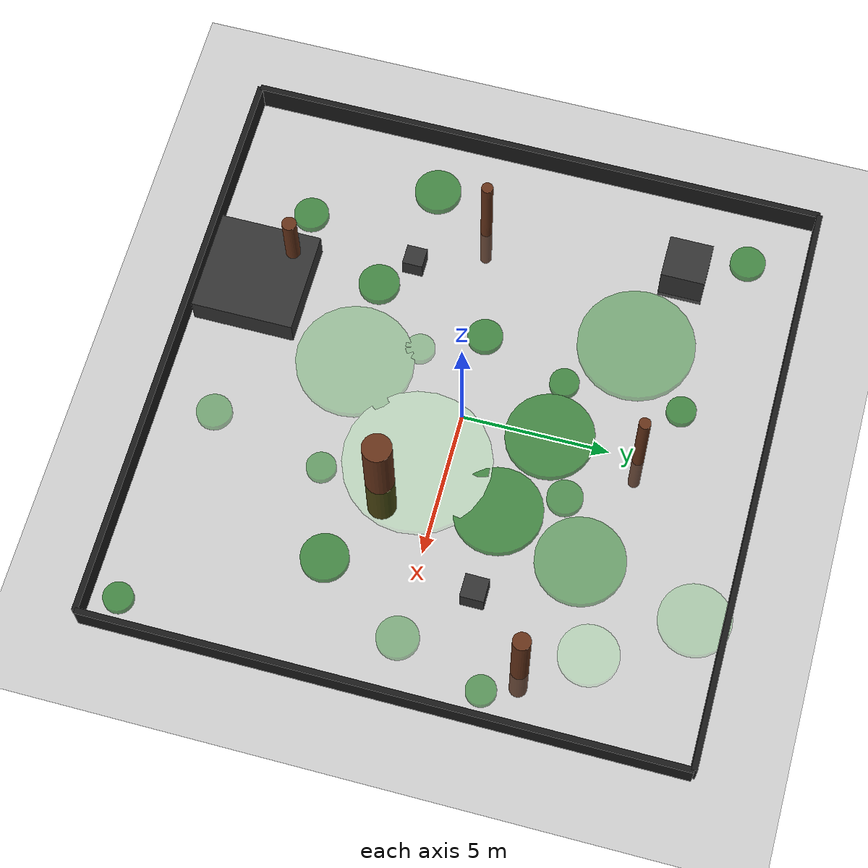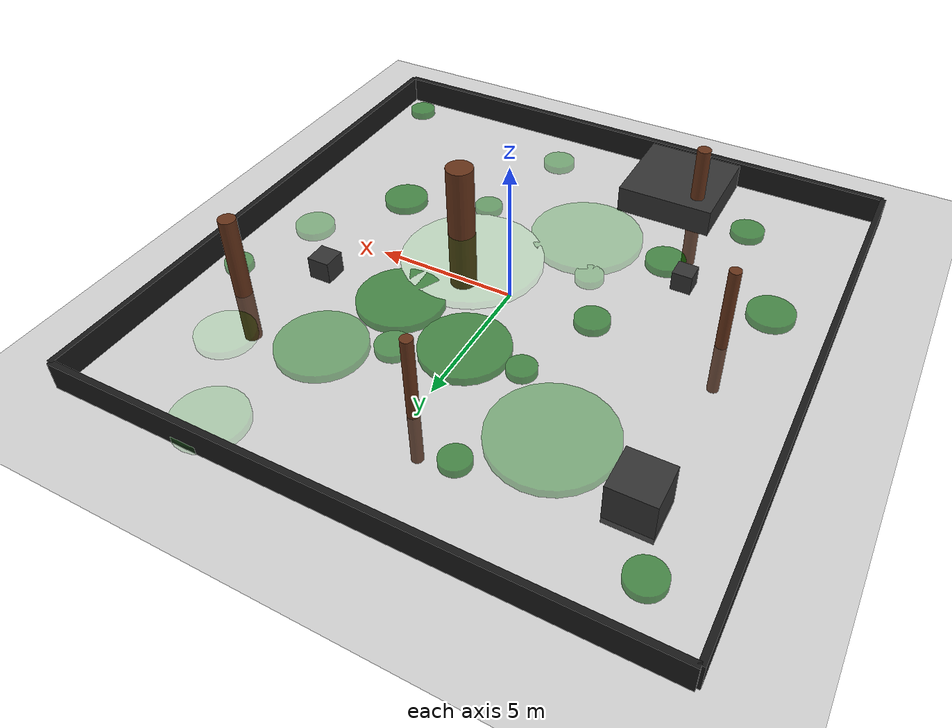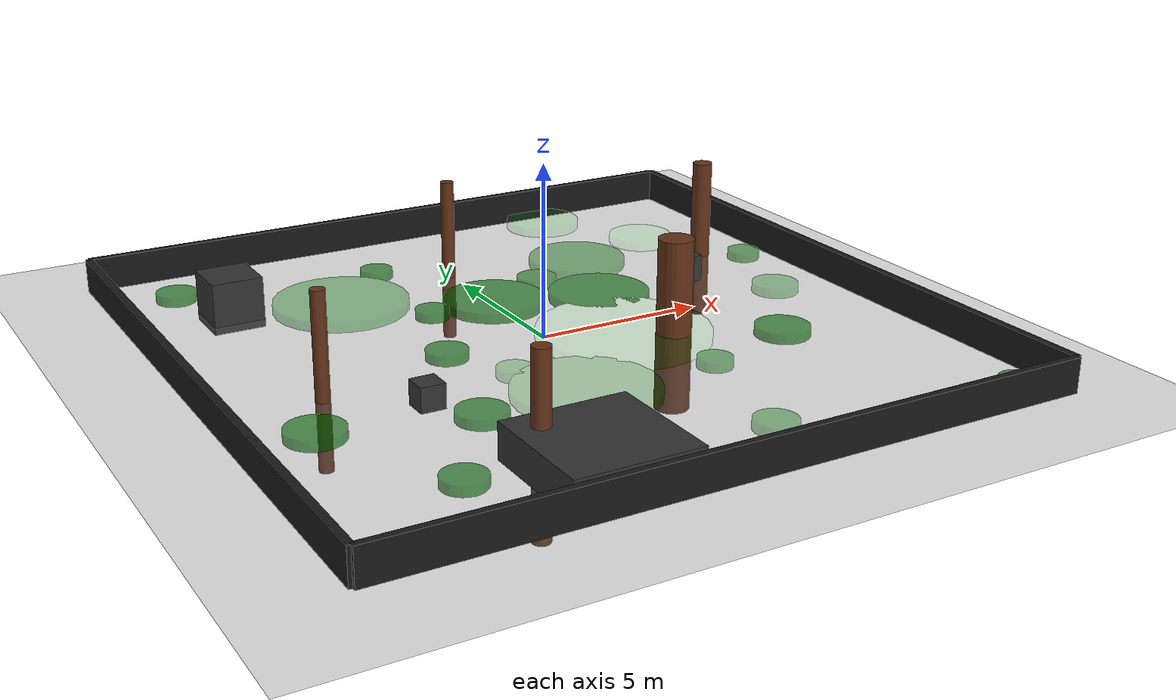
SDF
<?xml version="1.0" ?>
<sdf version="1.6">
  <world name="resistance_zone">
    <physics name="1ms" type="ignored">
      <max_step_size>0.001</max_step_size>
      <real_time_factor>1.0</real_time_factor>
    </physics>

    <plugin filename="libignition-gazebo-physics-system.so" name="ignition::gazebo::systems::Physics"/>
    <plugin filename="libignition-gazebo-sensors-system.so" name="ignition::gazebo::systems::Sensors">
      <render_engine>ogre2</render_engine>
    </plugin>
    <plugin filename="libignition-gazebo-scene-broadcaster-system.so" name="ignition::gazebo::systems::SceneBroadcaster"/>
    <plugin filename="libignition-gazebo-user-commands-system.so" name="ignition::gazebo::systems::UserCommands"/>

    <scene>
      <ambient>1.0 1.0 1.0 1.0</ambient>
      <background>0.8 0.8 0.8 1.0</background>
      <shadows>true</shadows>
    </scene>

    <light type="directional" name="sun">
      <cast_shadows>true</cast_shadows>
      <pose>0 0 10 0 0 0</pose>
      <diffuse>0.8 0.8 0.8 1</diffuse>
      <specular>0.8 0.8 0.8 1</specular>
      <direction>-0.5 0.1 -0.9</direction>
    </light>

    <!-- Ground Plane -->
    <model name="ground_plane">
      <static>true</static>
      <link name="link">
        <collision name="collision">
          <geometry>
            <plane>
              <normal>0 0 1</normal>
              <size>20 20</size>
            </plane>
          </geometry>
        </collision>
        <visual name="visual">
          <geometry>
            <plane>
              <normal>0 0 1</normal>
              <size>20 20</size>
            </plane>
          </geometry>
          <material>
            <ambient>0.4 0.4 0.4 1</ambient>
            <diffuse>0.4 0.4 0.4 1</diffuse>
            <specular>0.4 0.4 0.4 1</specular>
          </material>
        </visual>
      </link>
    </model>

    <!-- Transparency mapping for resistance:
         0.01 = 20% resistance (nearly solid)
         0.7 = 90% resistance (nearly transparent)
    -->

    <!-- Original 10 zones (kept for reference) -->
    <!-- Zone 1 - 50% resistance -->
    <model name="resistance_zone_1">
      <static>true</static>
      <pose>3 2 0.01 0 0 0</pose>
      <link name="link">
        <visual name="visual">
          <geometry>
            <cylinder>
              <radius>1.5</radius>
              <length>0.5</length>
            </cylinder>
          </geometry>
          <material>
            <ambient>0.0 0.36 0.0 0.7</ambient>
            <diffuse>0.0 0.36 0.0 0.7</diffuse>
            <specular>0.0 0.36 0.0 0.7</specular>
            <emissive>0.0 0.04 0.0 1.0</emissive>
          </material>
          <transparency>0.3</transparency>
        </visual>
        <!-- No collision element -->
      </link>
    </model>

    <!-- Zone 2 - 70% resistance -->
    <model name="resistance_zone_2">
      <static>true</static>
      <pose>-4 5 0.01 0 0 0</pose>
      <link name="link">
        <visual name="visual">
          <geometry>
            <cylinder>
              <radius>2.0</radius>
              <length>0.5</length>
            </cylinder>
          </geometry>
          <material>
            <ambient>0.0 0.36 0.0 0.7</ambient>
            <diffuse>0.0 0.36 0.0 0.7</diffuse>
            <specular>0.0 0.24 0.0 0.7</specular>
            <emissive>0.0 0.04 0.0 1.0</emissive>
          </material>
          <transparency>0.5</transparency>
        </visual>
        <!-- No collision element -->
      </link>
    </model>

    <!-- Zone 3 - 30% resistance -->
    <model name="resistance_zone_3">
      <static>true</static>
      <pose>6 -3 0.01 0 0 0</pose>
      <link name="link">
        <visual name="visual">
          <geometry>
            <cylinder>
              <radius>0.8</radius>
              <length>0.5</length>
            </cylinder>
          </geometry>
          <material>
            <ambient>0.0 0.36 0.0 0.7</ambient>
            <diffuse>0.0 0.36 0.0 0.7</diffuse>
            <specular>0.0 0.24 0.0 0.7</specular>
            <emissive>0.0 0.04 0.0 1.0</emissive>
          </material>
          <transparency>0.1</transparency>
        </visual>
        <!-- No collision element -->
      </link>
    </model>

    <!-- Additional 20 new zones (30 total) -->
    <!-- Zone 11 - 55% resistance -->
    <model name="resistance_zone_11">
      <static>true</static>
      <pose>2 4 0.01 0 0 0</pose>
      <link name="link">
        <visual name="visual">
          <geometry>
            <cylinder>
              <radius>0.6</radius>
              <length>0.5</length>
            </cylinder>
          </geometry>
          <material>
            <ambient>0.0 0.36 0.0 0.7</ambient>
            <diffuse>0.0 0.36 0.0 0.7</diffuse>
            <specular>0.0 0.24 0.0 0.7</specular>
            <emissive>0.0 0.04 0.0 1.0</emissive>
          </material>
          <transparency>0.35</transparency>
        </visual>
        <!-- No collision element -->
      </link>
    </model>

    <!-- Zone 12 - 65% resistance -->
    <model name="resistance_zone_12">
      <static>true</static>
      <pose>4 5 0.01 0 0 0</pose>
      <link name="link">
        <visual name="visual">
          <geometry>
            <cylinder>
              <radius>1.5</radius>
              <length>0.5</length>
            </cylinder>
          </geometry>
          <material>
            <ambient>0.0 0.36 0.0 0.7</ambient>
            <diffuse>0.0 0.36 0.0 0.7</diffuse>
            <specular>0.0 0.24 0.0 0.7</specular>
            <emissive>0.0 0.04 0.0 1.0</emissive>
          </material>
          <transparency>0.45</transparency>
        </visual>
        <!-- No collision element -->
      </link>
    </model>

    <!-- Zone 13 - 45% resistance -->
    <model name="resistance_zone_13">
      <static>true</static>
      <pose>0 3 0.01 0 0 0</pose>
      <link name="link">
        <visual name="visual">
          <geometry>
            <cylinder>
              <radius>1.5</radius>
              <length>0.5</length>
            </cylinder>
          </geometry>
          <material>
            <ambient>0.0 0.36 0.0 0.7</ambient>
            <diffuse>0.0 0.36 0.0 0.7</diffuse>
            <specular>0.0 0.24 0.0 0.7</specular>
            <emissive>0.0 0.04 0.0 1.0</emissive>
          </material>
          <transparency>0.25</transparency>
        </visual>
        <!-- No collision element -->
      </link>
    </model>

    <!-- Zone 14 - 35% resistance -->
    <model name="resistance_zone_14">
      <static>true</static>
      <pose>-2 3 0.01 0 0 0</pose>
      <link name="link">
        <visual name="visual">
          <geometry>
            <cylinder>
              <radius>0.5</radius>
              <length>0.5</length>
            </cylinder>
          </geometry>
          <material>
            <ambient>0.0 0.36 0.0 0.7</ambient>
            <diffuse>0.0 0.36 0.0 0.7</diffuse>
            <specular>0.0 0.24 0.0 0.7</specular>
            <emissive>0.0 0.04 0.0 1.0</emissive>
          </material>
          <transparency>0.15</transparency>
        </visual>
        <!-- No collision element -->
      </link>
    </model>

    <!-- Zone 15 - 25% resistance -->
    <model name="resistance_zone_15">
      <static>true</static>
      <pose>-3 0 0.01 0 0 0</pose>
      <link name="link">
        <visual name="visual">
          <geometry>
            <cylinder>
              <radius>0.6</radius>
              <length>0.5</length>
            </cylinder>
          </geometry>
          <material>
            <ambient>0.0 0.36 0.0 0.7</ambient>
            <diffuse>0.0 0.36 0.0 0.7</diffuse>
            <specular>0.0 0.24 0.0 0.7</specular>
            <emissive>0.0 0.04 0.0 1.0</emissive>
          </material>
          <transparency>0.05</transparency>
        </visual>
        <!-- No collision element -->
      </link>
    </model>

    <!-- Zone 16 - 95% resistance (extreme) -->
    <model name="resistance_zone_16">
      <static>true</static>
      <pose>2 -1 0.01 0 0 0</pose>
      <link name="link">
        <visual name="visual">
          <geometry>
            <cylinder>
              <radius>2.5</radius>
              <length>0.5</length>
            </cylinder>
          </geometry>
          <material>
            <ambient>0.0 0.36 0.0 0.7</ambient>
            <diffuse>0.0 0.36 0.0 0.7</diffuse>
            <specular>0.0 0.24 0.0 0.7</specular>
            <emissive>0.0 0.04 0.0 1.0</emissive>
          </material>
          <transparency>0.75</transparency>
        </visual>
        <!-- No collision element -->
      </link>
    </model>

    <!-- Zone 17 - 78% resistance -->
    <model name="resistance_zone_17">
      <static>true</static>
      <pose>-2 -2 0.01 0 0 0</pose>
      <link name="link">
        <visual name="visual">
          <geometry>
            <cylinder>
              <radius>0.5</radius>
              <length>0.5</length>
            </cylinder>
          </geometry>
          <material>
            <ambient>0.0 0.36 0.0 0.7</ambient>
            <diffuse>0.0 0.36 0.0 0.7</diffuse>
            <specular>0.0 0.24 0.0 0.7</specular>
            <emissive>0.0 0.04 0.0 1.0</emissive>
          </material>
          <transparency>0.58</transparency>
        </visual>
        <!-- No collision element -->
      </link>
    </model>

    <!-- Zone 18 - 42% resistance -->
    <model name="resistance_zone_18">
      <static>true</static>
      <pose>-4 -4 0.01 0 0 0</pose>
      <link name="link">
        <visual name="visual">
          <geometry>
            <cylinder>
              <radius>0.7</radius>
              <length>0.5</length>
            </cylinder>
          </geometry>
          <material>
            <ambient>0.0 0.36 0.0 0.7</ambient>
            <diffuse>0.0 0.36 0.0 0.7</diffuse>
            <specular>0.0 0.24 0.0 0.7</specular>
            <emissive>0.0 0.04 0.0 1.0</emissive>
          </material>
          <transparency>0.22</transparency>
        </visual>
        <!-- No collision element -->
      </link>
    </model>

    <!-- Zone 19 - 63% resistance -->
    <model name="resistance_zone_19">
      <static>true</static>
      <pose>3 -4 0.01 0 0 0</pose>
      <link name="link">
        <visual name="visual">
          <geometry>
            <cylinder>
              <radius>0.5</radius>
              <length>0.5</length>
            </cylinder>
          </geometry>
          <material>
            <ambient>0.0 0.36 0.0 0.7</ambient>
            <diffuse>0.0 0.36 0.0 0.7</diffuse>
            <specular>0.0 0.24 0.0 0.7</specular>
            <emissive>0.0 0.04 0.0 1.0</emissive>
          </material>
          <transparency>0.43</transparency>
        </visual>
        <!-- No collision element -->
      </link>
    </model>

    <!-- Zone 20 - 82% resistance -->
    <model name="resistance_zone_20">
      <static>true</static>
      <pose>-1 -4 0.01 0 0 0</pose>
      <link name="link">
        <visual name="visual">
          <geometry>
            <cylinder>
              <radius>2.0</radius>
              <length>0.5</length>
            </cylinder>
          </geometry>
          <material>
            <ambient>0.0 0.36 0.0 0.7</ambient>
            <diffuse>0.0 0.36 0.0 0.7</diffuse>
            <specular>0.0 0.24 0.0 0.7</specular>
            <emissive>0.0 0.04 0.0 1.0</emissive>
          </material>
          <transparency>0.62</transparency>
        </visual>
        <!-- No collision element -->
      </link>
    </model>

    <!-- Zone 21 - 15% resistance (very light) -->
    <model name="resistance_zone_21">
      <static>true</static>
      <pose>-8 -3 0.01 0 0 0</pose>
      <link name="link">
        <visual name="visual">
          <geometry>
            <cylinder>
              <radius>0.8</radius>
              <length>0.5</length>
            </cylinder>
          </geometry>
          <material>
            <ambient>0.0 0.36 0.0 0.7</ambient>
            <diffuse>0.0 0.36 0.0 0.7</diffuse>
            <specular>0.0 0.24 0.0 0.7</specular>
            <emissive>0.0 0.04 0.0 1.0</emissive>
          </material>
          <transparency>0.01</transparency>
        </visual>
        <!-- No collision element -->
      </link>
    </model>

    <!-- Zone 22 - 38% resistance -->
    <model name="resistance_zone_22">
      <static>true</static>
      <pose>-6 -7 0.01 0 0 0</pose>
      <link name="link">
        <visual name="visual">
          <geometry>
            <cylinder>
              <radius>0.6</radius>
              <length>0.5</length>
            </cylinder>
          </geometry>
          <material>
            <ambient>0.0 0.36 0.0 0.7</ambient>
            <diffuse>0.0 0.36 0.0 0.7</diffuse>
            <specular>0.0 0.24 0.0 0.7</specular>
            <emissive>0.0 0.04 0.0 1.0</emissive>
          </material>
          <transparency>0.18</transparency>
        </visual>
        <!-- No collision element -->
      </link>
    </model>

    <!-- Zone 23 - 68% resistance -->
    <model name="resistance_zone_23">
      <static>true</static>
      <pose>2 -8 0.01 0 0 0</pose>
      <link name="link">
        <visual name="visual">
          <geometry>
            <cylinder>
              <radius>0.6</radius>
              <length>0.5</length>
            </cylinder>
          </geometry>
          <material>
            <ambient>0.0 0.36 0.0 0.7</ambient>
            <diffuse>0.0 0.36 0.0 0.7</diffuse>
            <specular>0.0 0.24 0.0 0.7</specular>
            <emissive>0.0 0.04 0.0 1.0</emissive>
          </material>
          <transparency>0.48</transparency>
        </visual>
        <!-- No collision element -->
      </link>
    </model>

    <!-- Zone 24 - 72% resistance -->
    <model name="resistance_zone_24">
      <static>true</static>
      <pose>8 0 0.01 0 0 0</pose>
      <link name="link">
        <visual name="visual">
          <geometry>
            <cylinder>
              <radius>0.7</radius>
              <length>0.5</length>
            </cylinder>
          </geometry>
          <material>
            <ambient>0.0 0.36 0.0 0.7</ambient>
            <diffuse>0.0 0.36 0.0 0.7</diffuse>
            <specular>0.0 0.24 0.0 0.7</specular>
            <emissive>0.0 0.04 0.0 1.0</emissive>
          </material>
          <transparency>0.52</transparency>
        </visual>
        <!-- No collision element -->
      </link>
    </model>

    <!-- Zone 25 - 58% resistance -->
    <model name="resistance_zone_25">
      <static>true</static>
      <pose>9 3 0.01 0 0 0</pose>
      <link name="link">
        <visual name="visual">
          <geometry>
            <cylinder>
              <radius>0.5</radius>
              <length>0.5</length>
            </cylinder>
          </geometry>
          <material>
            <ambient>0.0 0.36 0.0 0.7</ambient>
            <diffuse>0.0 0.36 0.0 0.7</diffuse>
            <specular>0.0 0.24 0.0 0.7</specular>
            <emissive>0.0 0.04 0.0 1.0</emissive>
          </material>
          <transparency>0.38</transparency>
        </visual>
        <!-- No collision element -->
      </link>
    </model>

    <!-- Zone 26 - 47% resistance -->
    <model name="resistance_zone_26">
      <static>true</static>
      <pose>-2 7 0.01 0 0 0</pose>
      <link name="link">
        <visual name="visual">
          <geometry>
            <cylinder>
              <radius>0.5</radius>
              <length>0.5</length>
            </cylinder>
          </geometry>
          <material>
            <ambient>0.0 0.36 0.0 0.7</ambient>
            <diffuse>0.0 0.36 0.0 0.7</diffuse>
            <specular>0.0 0.24 0.0 0.7</specular>
            <emissive>0.0 0.04 0.0 1.0</emissive>
          </material>
          <transparency>0.27</transparency>
        </visual>
        <!-- No collision element -->
      </link>
    </model>

    <!-- Zone 27 - 33% resistance -->
    <model name="resistance_zone_27">
      <static>true</static>
      <pose>-8 8 0.01 0 0 0</pose>
      <link name="link">
        <visual name="visual">
          <geometry>
            <cylinder>
              <radius>0.6</radius>
              <length>0.5</length>
            </cylinder>
          </geometry>
          <material>
            <ambient>0.0 0.36 0.0 0.7</ambient>
            <diffuse>0.0 0.36 0.0 0.7</diffuse>
            <specular>0.0 0.24 0.0 0.7</specular>
            <emissive>0.0 0.04 0.0 1.0</emissive>
          </material>
          <transparency>0.13</transparency>
        </visual>
        <!-- No collision element -->
      </link>
    </model>

    <!-- Zone 28 - 88% resistance -->
    <model name="resistance_zone_28">
      <static>true</static>
      <pose>5 9 0.01 0 0 0</pose>
      <link name="link">
        <visual name="visual">
          <geometry>
            <cylinder>
              <radius>1.2</radius>
              <length>0.5</length>
            </cylinder>
          </geometry>
          <material>
            <ambient>0.0 0.36 0.0 0.7</ambient>
            <diffuse>0.0 0.36 0.0 0.7</diffuse>
            <specular>0.0 0.24 0.0 0.7</specular>
            <emissive>0.0 0.04 0.0 1.0</emissive>
          </material>
          <transparency>0.68</transparency>
        </visual>
        <!-- No collision element -->
      </link>
    </model>

    <!-- Zone 29 - 93% resistance -->
    <model name="resistance_zone_29">
      <static>true</static>
      <pose>7 6 0.01 0 0 0</pose>
      <link name="link">
        <visual name="visual">
          <geometry>
            <cylinder>
              <radius>1.0</radius>
              <length>0.5</length>
            </cylinder>
          </geometry>
          <material>
            <ambient>0.0 0.36 0.0 0.7</ambient>
            <diffuse>0.0 0.36 0.0 0.7</diffuse>
            <specular>0.0 0.24 0.0 0.7</specular>
            <emissive>0.0 0.04 0.0 1.0</emissive>
          </material>
          <transparency>0.73</transparency>
        </visual>
        <!-- No collision element -->
      </link>
    </model>

    <!-- Zone 30 - 28% resistance -->
    <model name="resistance_zone_30">
      <static>true</static>
      <pose>9 -9 0.01 0 0 0</pose>
      <link name="link">
        <visual name="visual">
          <geometry>
            <cylinder>
              <radius>0.5</radius>
              <length>0.5</length>
            </cylinder>
          </geometry>
          <material>
            <ambient>0.0 0.36 0.0 0.7</ambient>
            <diffuse>0.0 0.36 0.0 0.7</diffuse>
            <specular>0.0 0.24 0.0 0.7</specular>
            <emissive>0.0 0.04 0.0 1.0</emissive>
          </material>
          <transparency>0.08</transparency>
        </visual>
        <!-- No collision element -->
      </link>
    </model>

    <!-- Rigid Obstacles - Trees & Rocks -->
    <!-- Tree 1 -->
    <model name="tree_1">
      <static>true</static>
      <pose>0 6 0.5 0 0 0</pose>
      <link name="link">
        <visual name="visual">
          <geometry>
            <cylinder>
              <radius>0.2</radius>
              <length>5.0</length>
            </cylinder>
          </geometry>
          <material>
            <ambient>0.4 0.2 0.1 1</ambient>
            <diffuse>0.4 0.2 0.1 1</diffuse>
            <specular>0.4 0.2 0.1 1</specular>
          </material>
        </visual>
      <collision name="collision">
        <geometry>
          <cylinder>
            <radius>0.2</radius>
            <length>5.0</length>
          </cylinder>
        </geometry>
      </collision>
      </link>
    </model>

    <!-- Tree 2 -->
    <model name="tree_2">
      <static>true</static>
      <pose>-7 -1 0.5 0 0 0</pose>
      <link name="link">
        <visual name="visual">
          <geometry>
            <cylinder>
              <radius>0.2</radius>
              <length>5.0</length>
            </cylinder>
          </geometry>
          <material>
            <ambient>0.4 0.2 0.1 1</ambient>
            <diffuse>0.4 0.2 0.1 1</diffuse>
            <specular>0.4 0.2 0.1 1</specular>
          </material>
        </visual>
        <collision name="collision">
          <geometry>
            <cylinder>
              <radius>0.2</radius>
              <length>5.0</length>
            </cylinder>
          </geometry>
        </collision>
      </link>
    </model>

    <!-- Tree 3 -->
    <model name="tree_3">
      <static>true</static>
      <pose>3 -2 0.5 0 0 0</pose>
      <link name="link">
        <visual name="visual">
          <geometry>
            <cylinder>
              <radius>0.5</radius>
              <length>5.0</length>
            </cylinder>
          </geometry>
          <material>
            <ambient>0.4 0.2 0.1 1</ambient>
            <diffuse>0.4 0.2 0.1 1</diffuse>
            <specular>0.4 0.2 0.1 1</specular>
          </material>
        </visual>
        <collision name="collision">
          <geometry>
            <cylinder>
              <radius>0.5</radius>
              <length>5.0</length>
            </cylinder>
          </geometry>
        </collision>
      </link>
    </model>

    <!-- Additional Trees -->
    <!-- Tree 4 -->
    <model name="tree_4">
      <static>true</static>
      <pose>8 4 0.5 0 0 0</pose>
      <link name="link">
        <visual name="visual">
          <geometry>
            <cylinder>
              <radius>0.3</radius>
              <length>5.0</length>
            </cylinder>
          </geometry>
          <material>
            <ambient>0.4 0.2 0.1 1</ambient>
            <diffuse>0.4 0.2 0.1 1</diffuse>
            <specular>0.4 0.2 0.1 1</specular>
          </material>
        </visual>
        <collision name="collision">
          <geometry>
            <cylinder>
              <radius>0.3</radius>
              <length>5.0</length>
            </cylinder>
          </geometry>
        </collision>
      </link>
    </model>

    <!-- Tree 5 -->
    <model name="tree_5">
      <static>true</static>
      <pose>-4 -7 0.5 0 0 0</pose>
      <link name="link">
        <visual name="visual">
          <geometry>
            <cylinder>
              <radius>0.25</radius>
              <length>5.0</length>
            </cylinder>
          </geometry>
          <material>
            <ambient>0.4 0.2 0.1 1</ambient>
            <diffuse>0.4 0.2 0.1 1</diffuse>
            <specular>0.4 0.2 0.1 1</specular>
          </material>
        </visual>
        <collision name="collision">
          <geometry>
            <cylinder>
              <radius>0.25</radius>
              <length>5.0</length>
            </cylinder>
          </geometry>
        </collision>
      </link>
    </model>

    <!-- Rock 1 -->
    <model name="rock_1">
      <static>true</static>
      <pose>-3 -8 0.5 0 0 0</pose>
      <link name="link">
        <visual name="visual">
          <geometry>
            <box>
              <size>3.5 3.5 1</size>
            </box>
          </geometry>
          <material>
            <ambient>0.2 0.2 0.2 1</ambient>
            <diffuse>0.2 0.2 0.2 1</diffuse>
            <specular>0.2 0.2 0.2 1</specular>
          </material>
        </visual>
        <collision name="collision">
          <geometry>
            <box>
              <size>1 1 1</size>
            </box>
          </geometry>
        </collision>
      </link>
    </model>

    <!-- Rock 2 -->
    <model name="rock_2">
      <static>true</static>
      <pose>-7 6 0.5 0 0 0</pose>
      <link name="link">
        <visual name="visual">
          <geometry>
            <box>
              <size>1.5 1.5 1.5</size>
            </box>
          </geometry>
          <material>
            <ambient>0.2 0.2 0.2 1</ambient>
            <diffuse>0.2 0.2 0.2 1</diffuse>
            <specular>0.2 0.2 0.2 1</specular>
          </material>
        </visual>
        <collision name="collision">
          <geometry>
            <box>
              <size>1.5 1.5 1.5</size>
            </box>
          </geometry>
        </collision>
      </link>
    </model>

    <!-- Additional Rocks -->
    <!-- Rock 3 -->
    <model name="rock_3">
      <static>true</static>
      <pose>6 2 0.5 0 0 0</pose>
      <link name="link">
        <visual name="visual">
          <geometry>
            <box>
              <size>0.8 0.8 0.8</size>
            </box>
          </geometry>
          <material>
            <ambient>0.2 0.2 0.2 1</ambient>
            <diffuse>0.2 0.2 0.2 1</diffuse>
            <specular>0.2 0.2 0.2 1</specular>
          </material>
        </visual>
        <collision name="collision">
          <geometry>
            <box>
              <size>0.8 0.8 0.8</size>
            </box>
          </geometry>
        </collision>
      </link>
    </model>

    <!-- Rock 4 -->
    <model name="rock_4">
      <static>true</static>
      <pose>-5 -3 0.5 0 0 0</pose>
      <link name="link">
        <visual name="visual">
          <geometry>
            <box>
              <size>0.7 0.7 0.7</size>
            </box>
          </geometry>
          <material>
            <ambient>0.2 0.2 0.2 1</ambient>
            <diffuse>0.2 0.2 0.2 1</diffuse>
            <specular>0.2 0.2 0.2 1</specular>
          </material>
        </visual>
        <collision name="collision">
          <geometry>
            <box>
              <size>0.7 0.7 0.7</size>
            </box>
          </geometry>
        </collision>
      </link>
    </model>

    <!-- Boundary Wall -->
    <model name="boundary_wall">
      <static>true</static>
      <link name="wall_link">
        <!-- North wall -->
        <collision name="north_collision">
          <pose>0 10 0.5 0 0 0</pose>
          <geometry>
            <box>
              <size>20 0.2 1</size>
            </box>
          </geometry>
        </collision>
        <visual name="north_visual">
          <pose>0 10 0.5 0 0 0</pose>
          <geometry>
            <box>
              <size>20 0.2 1</size>
            </box>
          </geometry>
          <material>
            <ambient>0.1 0.1 0.1 1</ambient>
            <diffuse>0.1 0.1 0.1 1</diffuse>
            <specular>0.1 0.1 0.1 1</specular>
          </material>
        </visual>

        <!-- South wall -->
        <collision name="south_collision">
          <pose>0 -10 0.5 0 0 0</pose>
          <geometry>
            <box>
              <size>20 0.2 1</size>
            </box>
          </geometry>
        </collision>
        <visual name="south_visual">
          <pose>0 -10 0.5 0 0 0</pose>
          <geometry>
            <box>
              <size>20 0.2 1</size>
            </box>
          </geometry>
          <material>
            <ambient>0.1 0.1 0.1 1</ambient>
            <diffuse>0.1 0.1 0.1 1</diffuse>
            <specular>0.1 0.1 0.1 1</specular>
          </material>
        </visual>

        <!-- East wall -->
        <collision name="east_collision">
          <pose>10 0 0.5 0 0 0</pose>
          <geometry>
            <box>
              <size>0.2 20 1</size>
            </box>
          </geometry>
        </collision>
        <visual name="east_visual">
          <pose>10 0 0.5 0 0 0</pose>
          <geometry>
            <box>
              <size>0.2 20 1</size>
            </box>
          </geometry>
          <material>
            <ambient>0.1 0.1 0.1 1</ambient>
            <diffuse>0.1 0.1 0.1 1</diffuse>
            <specular>0.1 0.1 0.1 1</specular>
          </material>
        </visual>

        <!-- West wall -->
        <collision name="west_collision">
          <pose>-10 0 0.5 0 0 0</pose>
          <geometry>
            <box>
              <size>0.2 20 1</size>
            </box>
          </geometry>
        </collision>
        <visual name="west_visual">
          <pose>-10 0 0.5 0 0 0</pose>
          <geometry>
            <box>
              <size>0.2 20 1</size>
            </box>
          </geometry>
          <material>
            <ambient>0.1 0.1 0.1 1</ambient>
            <diffuse>0.1 0.1 0.1 1</diffuse>
            <specular>0.1 0.1 0.1 1</specular>
          </material>
        </visual>
      </link>
    </model>

  </world>
</sdf>
